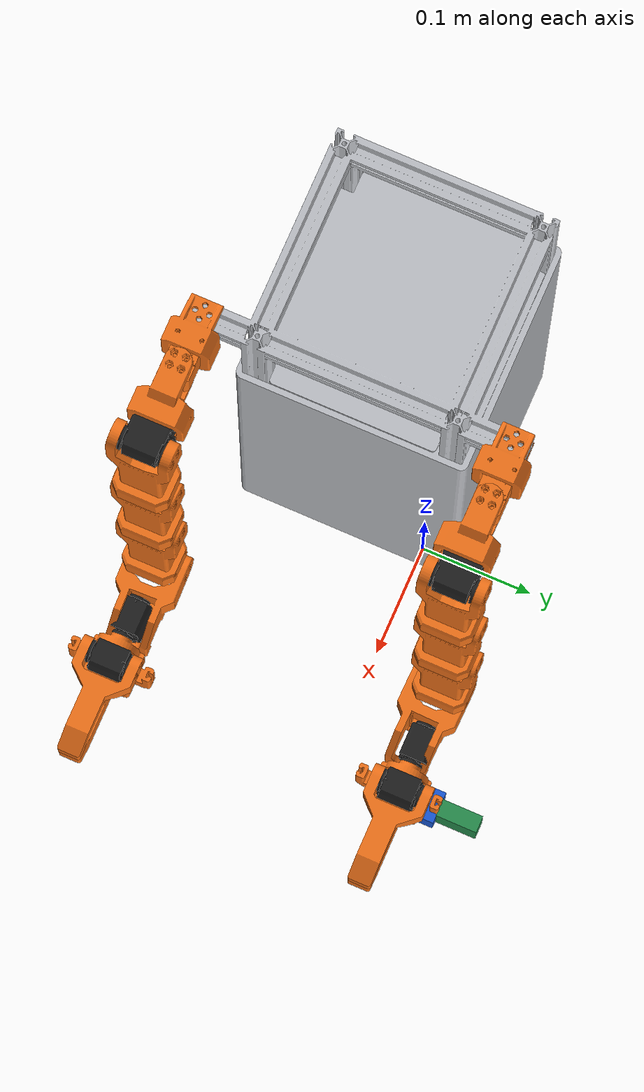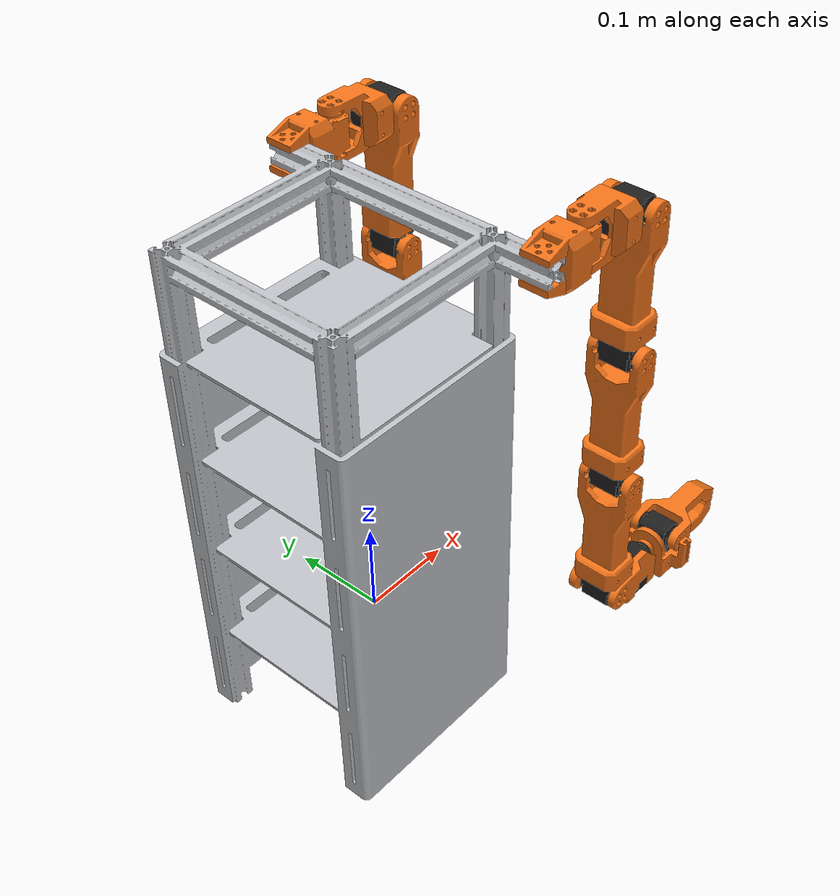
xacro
<?xml version="1.0"?>
<robot name="arm_body" xmlns:xacro="http://www.ros.org/wiki/xacro">

  <!-- Links, joints, meshes, masses and inertias generated from Fusion -->
  <xacro:include filename="$(find arm_body_description)/urdf/arm_body_core.xacro"/>

  <!-- OV3660 camera on arm A's gripper (Gazebo camera sensor). Off with camera:=false -->
  <xacro:arg name="camera" default="true"/>
  <xacro:if value="$(arg camera)">
    <xacro:include filename="$(find arm_body_description)/urdf/arm_a_camera.xacro"/>
  </xacro:if>

  <!-- Self-collision (arm vs body, arm vs arm) in Gazebo. Off by default.
       Turn on with:  ros2 launch arm_body_description gazebo.launch.py self_collide:=true -->
  <xacro:arg name="self_collide" default="false"/>
  <xacro:if value="$(arg self_collide)">
    <gazebo reference="base_link"><self_collide>true</self_collide></gazebo>
    <gazebo reference="arm_a_servo_base"><self_collide>true</self_collide></gazebo>
    <gazebo reference="arm_a_merge"><self_collide>true</self_collide></gazebo>
    <gazebo reference="arm_a_sts3250_2"><self_collide>true</self_collide></gazebo>
    <gazebo reference="arm_a_merge2_1"><self_collide>true</self_collide></gazebo>
    <gazebo reference="arm_a_sts3215_4"><self_collide>true</self_collide></gazebo>
    <gazebo reference="arm_a_merge2_2"><self_collide>true</self_collide></gazebo>
    <gazebo reference="arm_a_sts3215_5"><self_collide>true</self_collide></gazebo>
    <gazebo reference="arm_a_merge2_3"><self_collide>true</self_collide></gazebo>
    <gazebo reference="arm_a_sts3215_3"><self_collide>true</self_collide></gazebo>
    <gazebo reference="arm_a_wrist"><self_collide>true</self_collide></gazebo>
    <gazebo reference="arm_a_sts3215_6"><self_collide>true</self_collide></gazebo>
    <gazebo reference="arm_a_gripper_1"><self_collide>true</self_collide></gazebo>
    <gazebo reference="arm_a_sts3215_7"><self_collide>true</self_collide></gazebo>
    <gazebo reference="arm_a_gripper_2"><self_collide>true</self_collide></gazebo>
    <gazebo reference="arm_b_servo_base"><self_collide>true</self_collide></gazebo>
    <gazebo reference="arm_b_merge"><self_collide>true</self_collide></gazebo>
    <gazebo reference="arm_b_sts3250_2"><self_collide>true</self_collide></gazebo>
    <gazebo reference="arm_b_merge2_1"><self_collide>true</self_collide></gazebo>
    <gazebo reference="arm_b_sts3215_4"><self_collide>true</self_collide></gazebo>
    <gazebo reference="arm_b_merge2_2"><self_collide>true</self_collide></gazebo>
    <gazebo reference="arm_b_sts3215_5"><self_collide>true</self_collide></gazebo>
    <gazebo reference="arm_b_merge2_3"><self_collide>true</self_collide></gazebo>
    <gazebo reference="arm_b_sts3215_3"><self_collide>true</self_collide></gazebo>
    <gazebo reference="arm_b_wrist"><self_collide>true</self_collide></gazebo>
    <gazebo reference="arm_b_sts3215_6"><self_collide>true</self_collide></gazebo>
    <gazebo reference="arm_b_gripper_1"><self_collide>true</self_collide></gazebo>
    <gazebo reference="arm_b_sts3215_7"><self_collide>true</self_collide></gazebo>
    <gazebo reference="arm_b_gripper_2"><self_collide>true</self_collide></gazebo>
  </xacro:if>

  <!-- ros2_control: position-controlled joints, driven by Gazebo (gz_ros2_control) -->
  <ros2_control name="GazeboSimSystem" type="system">
    <hardware>
      <plugin>gz_ros2_control/GazeboSimSystem</plugin>
    </hardware>
    <joint name="arm_a_joint1">
      <command_interface name="position">
        <param name="min">-1.5708</param>
        <param name="max">1.5708</param>
      </command_interface>
      <state_interface name="position">
        <param name="initial_value">0.0</param>
      </state_interface>
      <state_interface name="velocity"/>
    </joint>
    <joint name="arm_a_joint2">
      <command_interface name="position">
        <param name="min">-3.1416</param>
        <param name="max">0.0000</param>
      </command_interface>
      <state_interface name="position">
        <param name="initial_value">-0.01</param>
      </state_interface>
      <state_interface name="velocity"/>
    </joint>
    <joint name="arm_a_joint3">
      <command_interface name="position">
        <param name="min">-1.5708</param>
        <param name="max">1.5708</param>
      </command_interface>
      <state_interface name="position">
        <param name="initial_value">0.0</param>
      </state_interface>
      <state_interface name="velocity"/>
    </joint>
    <joint name="arm_a_joint4">
      <command_interface name="position">
        <param name="min">-1.5708</param>
        <param name="max">1.5708</param>
      </command_interface>
      <state_interface name="position">
        <param name="initial_value">0.0</param>
      </state_interface>
      <state_interface name="velocity"/>
    </joint>
    <joint name="arm_a_joint5">
      <command_interface name="position">
        <param name="min">0.0000</param>
        <param name="max">3.1416</param>
      </command_interface>
      <state_interface name="position">
        <param name="initial_value">0.01</param>
      </state_interface>
      <state_interface name="velocity"/>
    </joint>
    <joint name="arm_a_joint6">
      <command_interface name="position">
        <param name="min">0.0000</param>
        <param name="max">6.2832</param>
      </command_interface>
      <state_interface name="position">
        <param name="initial_value">0.01</param>
      </state_interface>
      <state_interface name="velocity"/>
    </joint>
    <joint name="arm_a_gripper_joint">
      <command_interface name="position">
        <param name="min">0.0000</param>
        <param name="max">1.5708</param>
      </command_interface>
      <state_interface name="position">
        <param name="initial_value">0.01</param>
      </state_interface>
      <state_interface name="velocity"/>
    </joint>
    <joint name="arm_b_joint1">
      <command_interface name="position">
        <param name="min">-1.5708</param>
        <param name="max">1.5708</param>
      </command_interface>
      <state_interface name="position">
        <param name="initial_value">0.0</param>
      </state_interface>
      <state_interface name="velocity"/>
    </joint>
    <joint name="arm_b_joint2">
      <command_interface name="position">
        <param name="min">-3.1416</param>
        <param name="max">-0.0000</param>
      </command_interface>
      <state_interface name="position">
        <param name="initial_value">-0.01</param>
      </state_interface>
      <state_interface name="velocity"/>
    </joint>
    <joint name="arm_b_joint3">
      <command_interface name="position">
        <param name="min">-1.5708</param>
        <param name="max">1.5708</param>
      </command_interface>
      <state_interface name="position">
        <param name="initial_value">0.0</param>
      </state_interface>
      <state_interface name="velocity"/>
    </joint>
    <joint name="arm_b_joint4">
      <command_interface name="position">
        <param name="min">-1.5708</param>
        <param name="max">1.5708</param>
      </command_interface>
      <state_interface name="position">
        <param name="initial_value">0.0</param>
      </state_interface>
      <state_interface name="velocity"/>
    </joint>
    <joint name="arm_b_joint5">
      <command_interface name="position">
        <param name="min">0.0000</param>
        <param name="max">3.1416</param>
      </command_interface>
      <state_interface name="position">
        <param name="initial_value">0.01</param>
      </state_interface>
      <state_interface name="velocity"/>
    </joint>
    <joint name="arm_b_joint6">
      <command_interface name="position">
        <param name="min">0.0000</param>
        <param name="max">6.2832</param>
      </command_interface>
      <state_interface name="position">
        <param name="initial_value">0.01</param>
      </state_interface>
      <state_interface name="velocity"/>
    </joint>
    <joint name="arm_b_gripper_joint">
      <command_interface name="position">
        <param name="min">-0.0000</param>
        <param name="max">1.5708</param>
      </command_interface>
      <state_interface name="position">
        <param name="initial_value">0.01</param>
      </state_interface>
      <state_interface name="velocity"/>
    </joint>
  </ros2_control>

  <!-- Gazebo Harmonic: load the ros2_control plugin with our controller config -->
  <gazebo>
    <plugin filename="libgz_ros2_control-system.so" name="gz_ros2_control::GazeboSimROS2ControlPlugin">
      <parameters>$(find arm_body_description)/config/controllers.yaml</parameters>
    </plugin>
  </gazebo>

</robot>

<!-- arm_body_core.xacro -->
<robot xmlns:xacro="http://www.ros.org/wiki/xacro">
  <!-- Generated from Fusion design "Arm + Body v12". Units: metres, kilograms. -->
  <material name="petg_orange"><color rgba="0.95 0.45 0.10 1"/></material>
  <material name="servo_black"><color rgba="0.12 0.12 0.12 1"/></material>
  <material name="aluminium"><color rgba="0.75 0.76 0.78 1"/></material>
  <link name="world"/>
  <joint name="world_to_base" type="fixed">
    <parent link="world"/>
    <child link="base_link"/>
    <origin xyz="0 0 -0.2299" rpy="0 0 0"/>
  </joint>
  <link name="base_link">
    <inertial>
      <origin xyz="-0.06982 -0.065942 0.465586" rpy="0 0 0"/>
      <mass value="5.541254"/>
      <inertia ixx="1.3250e-01" ixy="-1.3357e-04" ixz="1.6258e-03" iyy="1.2468e-01" iyz="3.4035e-05" izz="6.3112e-02"/>
    </inertial>
    <visual>
      <origin xyz="0 -0.150129 0.629871" rpy="1.570796 0 0"/>
      <geometry><mesh filename="package://arm_body_description/meshes/base_link.stl" scale="0.001 0.001 0.001"/></geometry>
      <material name="aluminium"/>
    </visual>
    <collision>
      <origin xyz="0 -0.150129 0.629871" rpy="1.570796 0 0"/>
      <geometry><mesh filename="package://arm_body_description/meshes/base_link.stl" scale="0.001 0.001 0.001"/></geometry>
    </collision>
  </link>
  <link name="arm_a_servo_base">
    <inertial>
      <origin xyz="0.034003 0.066751 0.720114" rpy="0 0 0"/>
      <mass value="0.089575"/>
      <inertia ixx="1.6237e-05" ixy="-1.9098e-07" ixz="-3.1938e-07" iyy="3.0665e-05" iyz="-5.8501e-09" izz="2.6592e-05"/>
    </inertial>
    <visual>
      <origin xyz="0.008149 0.113918 0.720321" rpy="0 0 0"/>
      <geometry><mesh filename="package://arm_body_description/meshes/arm_a_servo_base.stl" scale="0.001 0.001 0.001"/></geometry>
      <material name="petg_orange"/>
    </visual>
    <collision>
      <origin xyz="0.008149 0.113918 0.720321" rpy="0 0 0"/>
      <geometry><mesh filename="package://arm_body_description/meshes/arm_a_servo_base.stl" scale="0.001 0.001 0.001"/></geometry>
    </collision>
  </link>
  <joint name="arm_a_servo_base_fixed" type="fixed">
    <parent link="base_link"/>
    <child link="arm_a_servo_base"/>
    <origin xyz="0 0 0" rpy="0 0 0"/>
  </joint>
  <link name="arm_a_merge">
    <inertial>
      <origin xyz="0.027871 -0.000869 -0.017787" rpy="0 0 0"/>
      <mass value="0.017918"/>
      <inertia ixx="8.0952e-06" ixy="1.9232e-07" ixz="4.2786e-08" iyy="8.9403e-06" iyz="-2.3279e-09" izz="6.4557e-06"/>
    </inertial>
    <visual>
      <origin xyz="-0.04205 0.109249 -0.017324" rpy="1.4634 -1.570796 -1.4634"/>
      <geometry><mesh filename="package://arm_body_description/meshes/arm_a_merge.stl" scale="0.001 0.001 0.001"/></geometry>
      <material name="petg_orange"/>
    </visual>
    <collision>
      <origin xyz="-0.04205 0.109249 -0.017324" rpy="1.4634 -1.570796 -1.4634"/>
      <geometry><mesh filename="package://arm_body_description/meshes/arm_a_merge.stl" scale="0.001 0.001 0.001"/></geometry>
    </collision>
  </link>
  <joint name="arm_a_joint1" type="revolute">
    <parent link="arm_a_servo_base"/>
    <child link="arm_a_merge"/>
    <origin xyz="0.050498 0.066869 0.738721" rpy="0 0 0"/>
    <axis xyz="0 0 1"/>
    <limit lower="-1.5708" upper="1.5708" effort="4.9" velocity="7.85"/>
    <dynamics damping="0.1" friction="0.05"/>
  </joint>
  <link name="arm_a_sts3250_2">
    <inertial>
      <origin xyz="0.054394 0.00057 -0.01793" rpy="0 0 0"/>
      <mass value="0.074500"/>
      <inertia ixx="1.0445e-05" ixy="-1.3398e-07" ixz="-2.4388e-12" iyy="1.6305e-05" iyz="1.5442e-11" izz="1.9439e-05"/>
    </inertial>
    <visual>
      <origin xyz="-0.04315 0.1098 -0.01793" rpy="-1.570796 0 1.570796"/>
      <geometry><mesh filename="package://arm_body_description/meshes/arm_a_sts3250_2.stl" scale="0.001 0.001 0.001"/></geometry>
      <material name="servo_black"/>
    </visual>
    <collision>
      <origin xyz="-0.04315 0.1098 -0.01793" rpy="-1.570796 0 1.570796"/>
      <geometry><mesh filename="package://arm_body_description/meshes/arm_a_sts3250_2.stl" scale="0.001 0.001 0.001"/></geometry>
    </collision>
  </link>
  <joint name="arm_a_sts3250_2_fixed" type="fixed">
    <parent link="arm_a_merge"/>
    <child link="arm_a_sts3250_2"/>
    <origin xyz="0 0 0" rpy="0 0 0"/>
  </joint>
  <link name="arm_a_merge2_1">
    <inertial>
      <origin xyz="0.00017 -0.018657 -0.063978" rpy="0 0 0"/>
      <mass value="0.038030"/>
      <inertia ixx="6.4847e-05" ixy="2.2923e-09" ixz="1.7577e-07" iyy="5.9124e-05" iyz="-2.7892e-08" izz="1.3347e-05"/>
    </inertial>
    <visual>
      <origin xyz="-0.11135 0.116301 0.000551" rpy="-1.56878 -1.570796 -1.572813"/>
      <geometry><mesh filename="package://arm_body_description/meshes/arm_a_merge2_1.stl" scale="0.001 0.001 0.001"/></geometry>
      <material name="petg_orange"/>
    </visual>
    <collision>
      <origin xyz="-0.11135 0.116301 0.000551" rpy="-1.56878 -1.570796 -1.572813"/>
      <geometry><mesh filename="package://arm_body_description/meshes/arm_a_merge2_1.stl" scale="0.001 0.001 0.001"/></geometry>
    </collision>
  </link>
  <joint name="arm_a_joint2" type="revolute">
    <parent link="arm_a_sts3250_2"/>
    <child link="arm_a_merge2_1"/>
    <origin xyz="0.0672 0.01905 -0.01793" rpy="0 0 0"/>
    <axis xyz="0 1 0"/>
    <limit lower="-3.1416" upper="0.0000" effort="4.9" velocity="7.85"/>
    <dynamics damping="0.1" friction="0.05"/>
  </joint>
  <link name="arm_a_sts3215_4">
    <inertial>
      <origin xyz="0 -0.017579 -0.128393" rpy="0 0 0"/>
      <mass value="0.055000"/>
      <inertia ixx="1.4353e-05" ixy="-4.5297e-09" ixz="1.3538e-11" iyy="1.2037e-05" iyz="9.5296e-08" izz="7.7063e-06"/>
    </inertial>
    <visual>
      <origin xyz="-0.111251 0.10325 -0.1287" rpy="-1.572735 1.570796 1.568857"/>
      <geometry><mesh filename="package://arm_body_description/meshes/arm_a_sts3215_4.stl" scale="0.001 0.001 0.001"/></geometry>
      <material name="servo_black"/>
    </visual>
    <collision>
      <origin xyz="-0.111251 0.10325 -0.1287" rpy="-1.572735 1.570796 1.568857"/>
      <geometry><mesh filename="package://arm_body_description/meshes/arm_a_sts3215_4.stl" scale="0.001 0.001 0.001"/></geometry>
    </collision>
  </link>
  <joint name="arm_a_sts3215_4_fixed" type="fixed">
    <parent link="arm_a_merge2_1"/>
    <child link="arm_a_sts3215_4"/>
    <origin xyz="0 0 0" rpy="0 0 0"/>
  </joint>
  <link name="arm_a_merge2_2">
    <inertial>
      <origin xyz="0.00017 -0.018657 -0.063978" rpy="0 0 0"/>
      <mass value="0.038030"/>
      <inertia ixx="6.4847e-05" ixy="2.2923e-09" ixz="1.7577e-07" iyy="5.9124e-05" iyz="-2.7892e-08" izz="1.3347e-05"/>
    </inertial>
    <visual>
      <origin xyz="-0.112251 0.1154 0.000551" rpy="-1.571184 -1.570796 -1.570409"/>
      <geometry><mesh filename="package://arm_body_description/meshes/arm_a_merge2_2.stl" scale="0.001 0.001 0.001"/></geometry>
      <material name="petg_orange"/>
    </visual>
    <collision>
      <origin xyz="-0.112251 0.1154 0.000551" rpy="-1.571184 -1.570796 -1.570409"/>
      <geometry><mesh filename="package://arm_body_description/meshes/arm_a_merge2_2.stl" scale="0.001 0.001 0.001"/></geometry>
    </collision>
  </link>
  <joint name="arm_a_joint3" type="revolute">
    <parent link="arm_a_sts3215_4"/>
    <child link="arm_a_merge2_2"/>
    <origin xyz="0 0.000901 -0.1412" rpy="0 0 0"/>
    <axis xyz="0 1 0"/>
    <limit lower="-1.5708" upper="1.5708" effort="2.94" velocity="4.72"/>
    <dynamics damping="0.1" friction="0.05"/>
  </joint>
  <link name="arm_a_sts3215_5">
    <inertial>
      <origin xyz="0 -0.01788 -0.128393" rpy="0 0 0"/>
      <mass value="0.055000"/>
      <inertia ixx="1.4354e-05" ixy="-4.5315e-09" ixz="1.3600e-11" iyy="1.2036e-05" iyz="9.5296e-08" izz="7.7063e-06"/>
    </inertial>
    <visual>
      <origin xyz="-0.111851 0.102349 -0.1287" rpy="-1.570677 1.570796 1.570915"/>
      <geometry><mesh filename="package://arm_body_description/meshes/arm_a_sts3215_5.stl" scale="0.001 0.001 0.001"/></geometry>
      <material name="servo_black"/>
    </visual>
    <collision>
      <origin xyz="-0.111851 0.102349 -0.1287" rpy="-1.570677 1.570796 1.570915"/>
      <geometry><mesh filename="package://arm_body_description/meshes/arm_a_sts3215_5.stl" scale="0.001 0.001 0.001"/></geometry>
    </collision>
  </link>
  <joint name="arm_a_sts3215_5_fixed" type="fixed">
    <parent link="arm_a_merge2_2"/>
    <child link="arm_a_sts3215_5"/>
    <origin xyz="0 0 0" rpy="0 0 0"/>
  </joint>
  <link name="arm_a_merge2_3">
    <inertial>
      <origin xyz="0.00017 -0.018657 -0.063978" rpy="0 0 0"/>
      <mass value="0.038030"/>
      <inertia ixx="6.4847e-05" ixy="2.2923e-09" ixz="1.7577e-07" iyy="5.9124e-05" iyz="-2.7892e-08" izz="1.3347e-05"/>
    </inertial>
    <visual>
      <origin xyz="-0.112851 0.1148 0.000551" rpy="-1.571631 -1.570796 -1.569961"/>
      <geometry><mesh filename="package://arm_body_description/meshes/arm_a_merge2_3.stl" scale="0.001 0.001 0.001"/></geometry>
      <material name="petg_orange"/>
    </visual>
    <collision>
      <origin xyz="-0.112851 0.1148 0.000551" rpy="-1.571631 -1.570796 -1.569961"/>
      <geometry><mesh filename="package://arm_body_description/meshes/arm_a_merge2_3.stl" scale="0.001 0.001 0.001"/></geometry>
    </collision>
  </link>
  <joint name="arm_a_joint4" type="revolute">
    <parent link="arm_a_sts3215_5"/>
    <child link="arm_a_merge2_3"/>
    <origin xyz="0 0.0006 -0.1412" rpy="0 0 0"/>
    <axis xyz="0 1 0"/>
    <limit lower="-1.5708" upper="1.5708" effort="2.94" velocity="4.72"/>
    <dynamics damping="0.1" friction="0.05"/>
  </joint>
  <link name="arm_a_sts3215_3">
    <inertial>
      <origin xyz="0 -0.018322 -0.128393" rpy="0 0 0"/>
      <mass value="0.055000"/>
      <inertia ixx="1.4354e-05" ixy="-4.5498e-09" ixz="9.6252e-12" iyy="1.2036e-05" iyz="-9.5321e-08" izz="7.7062e-06"/>
    </inertial>
    <visual>
      <origin xyz="-0.112451 0.101749 -0.1287" rpy="1.573328 1.570796 1.573328"/>
      <geometry><mesh filename="package://arm_body_description/meshes/arm_a_sts3215_3.stl" scale="0.001 0.001 0.001"/></geometry>
      <material name="servo_black"/>
    </visual>
    <collision>
      <origin xyz="-0.112451 0.101749 -0.1287" rpy="1.573328 1.570796 1.573328"/>
      <geometry><mesh filename="package://arm_body_description/meshes/arm_a_sts3215_3.stl" scale="0.001 0.001 0.001"/></geometry>
    </collision>
  </link>
  <joint name="arm_a_sts3215_3_fixed" type="fixed">
    <parent link="arm_a_merge2_3"/>
    <child link="arm_a_sts3215_3"/>
    <origin xyz="0 0 0" rpy="0 0 0"/>
  </joint>
  <link name="arm_a_wrist">
    <inertial>
      <origin xyz="0.033844 0.019438 -0.007947" rpy="0 0 0"/>
      <mass value="0.025519"/>
      <inertia ixx="1.3108e-05" ixy="-1.3181e-07" ixz="3.9390e-06" iyy="1.7716e-05" iyz="4.4573e-08" izz="1.9475e-05"/>
    </inertial>
    <visual>
      <origin xyz="-0.111899 0.064149 -0.00495" rpy="1.596465 -1.570796 -1.62352"/>
      <geometry><mesh filename="package://arm_body_description/meshes/arm_a_wrist.stl" scale="0.001 0.001 0.001"/></geometry>
      <material name="petg_orange"/>
    </visual>
    <collision>
      <origin xyz="-0.111899 0.064149 -0.00495" rpy="1.596465 -1.570796 -1.62352"/>
      <geometry><mesh filename="package://arm_body_description/meshes/arm_a_wrist.stl" scale="0.001 0.001 0.001"/></geometry>
    </collision>
  </link>
  <joint name="arm_a_joint5" type="revolute">
    <parent link="arm_a_sts3215_3"/>
    <child link="arm_a_wrist"/>
    <origin xyz="0 -0.0383 -0.1412" rpy="0 0 0"/>
    <axis xyz="0 1 0"/>
    <limit lower="0.0000" upper="3.1416" effort="2.94" velocity="4.72"/>
    <dynamics damping="0.1" friction="0.05"/>
  </joint>
  <link name="arm_a_sts3215_6">
    <inertial>
      <origin xyz="0.052422 0.019647 -0.017757" rpy="0 0 0"/>
      <mass value="0.055000"/>
      <inertia ixx="1.2031e-05" ixy="-9.5692e-09" ixz="-9.5327e-08" iyy="1.4349e-05" iyz="1.6071e-11" izz="7.6962e-06"/>
    </inertial>
    <visual>
      <origin xyz="-0.111899 0.192249 -0.01745" rpy="0.052723 -1.570796 -1.62352"/>
      <geometry><mesh filename="package://arm_body_description/meshes/arm_a_sts3215_6.stl" scale="0.001 0.001 0.001"/></geometry>
      <material name="servo_black"/>
    </visual>
    <collision>
      <origin xyz="-0.111899 0.192249 -0.01745" rpy="0.052723 -1.570796 -1.62352"/>
      <geometry><mesh filename="package://arm_body_description/meshes/arm_a_sts3215_6.stl" scale="0.001 0.001 0.001"/></geometry>
    </collision>
  </link>
  <joint name="arm_a_sts3215_6_fixed" type="fixed">
    <parent link="arm_a_wrist"/>
    <child link="arm_a_sts3215_6"/>
    <origin xyz="0 0 0" rpy="0 0 0"/>
  </joint>
  <link name="arm_a_gripper_1">
    <inertial>
      <origin xyz="0.043641 -0.00047 -0.014381" rpy="0 0 0"/>
      <mass value="0.025921"/>
      <inertia ixx="9.0235e-06" ixy="-2.1818e-07" ixz="8.7572e-07" iyy="2.7646e-05" iyz="-3.0866e-08" izz="3.0635e-05"/>
    </inertial>
    <visual>
      <origin xyz="-0.180299 0.044301 0" rpy="1.62352 -1.570796 -1.62352"/>
      <geometry><mesh filename="package://arm_body_description/meshes/arm_a_gripper_1.stl" scale="0.001 0.001 0.001"/></geometry>
      <material name="petg_orange"/>
    </visual>
    <collision>
      <origin xyz="-0.180299 0.044301 0" rpy="1.62352 -1.570796 -1.62352"/>
      <geometry><mesh filename="package://arm_body_description/meshes/arm_a_gripper_1.stl" scale="0.001 0.001 0.001"/></geometry>
    </collision>
  </link>
  <joint name="arm_a_joint6" type="revolute">
    <parent link="arm_a_sts3215_6"/>
    <child link="arm_a_gripper_1"/>
    <origin xyz="0.0684 0.019648 -0.00495" rpy="0 0 0"/>
    <axis xyz="1 0 0"/>
    <limit lower="0.0000" upper="6.2832" effort="2.94" velocity="4.72"/>
    <dynamics damping="0.1" friction="0.05"/>
  </joint>
  <link name="arm_a_sts3215_7">
    <inertial>
      <origin xyz="0.026301 0.00077 0.000193" rpy="0 0 0"/>
      <mass value="0.055000"/>
      <inertia ixx="1.4343e-05" ixy="-1.5009e-08" ixz="-1.9649e-11" iyy="1.2026e-05" iyz="-9.5288e-08" izz="7.6854e-06"/>
    </inertial>
    <visual>
      <origin xyz="-0.180849 0.215101 0.0005" rpy="1.623281 -1.570796 -1.623281"/>
      <geometry><mesh filename="package://arm_body_description/meshes/arm_a_sts3215_7.stl" scale="0.001 0.001 0.001"/></geometry>
      <material name="servo_black"/>
    </visual>
    <collision>
      <origin xyz="-0.180849 0.215101 0.0005" rpy="1.623281 -1.570796 -1.623281"/>
      <geometry><mesh filename="package://arm_body_description/meshes/arm_a_sts3215_7.stl" scale="0.001 0.001 0.001"/></geometry>
    </collision>
  </link>
  <joint name="arm_a_sts3215_7_fixed" type="fixed">
    <parent link="arm_a_gripper_1"/>
    <child link="arm_a_sts3215_7"/>
    <origin xyz="0 0 0" rpy="0 0 0"/>
  </joint>
  <link name="arm_a_gripper_2">
    <inertial>
      <origin xyz="0.035324 -0.018991 0.000973" rpy="0 0 0"/>
      <mass value="0.014562"/>
      <inertia ixx="3.2637e-06" ixy="2.7195e-08" ixz="2.6090e-08" iyy="1.0597e-05" iyz="1.4854e-09" izz="1.2709e-05"/>
    </inertial>
    <visual>
      <origin xyz="-0.207149 0.025101 -0.01295" rpy="1.624476 -1.570796 -1.624476"/>
      <geometry><mesh filename="package://arm_body_description/meshes/arm_a_gripper_2.stl" scale="0.001 0.001 0.001"/></geometry>
      <material name="petg_orange"/>
    </visual>
    <collision>
      <origin xyz="-0.207149 0.025101 -0.01295" rpy="1.624476 -1.570796 -1.624476"/>
      <geometry><mesh filename="package://arm_body_description/meshes/arm_a_gripper_2.stl" scale="0.001 0.001 0.001"/></geometry>
    </collision>
  </link>
  <joint name="arm_a_gripper_joint" type="revolute">
    <parent link="arm_a_sts3215_7"/>
    <child link="arm_a_gripper_2"/>
    <origin xyz="0.0263 0.01925 0.013" rpy="0 0 0"/>
    <axis xyz="0 -1 0"/>
    <limit lower="0.0000" upper="1.5708" effort="2.94" velocity="4.72"/>
    <dynamics damping="0.1" friction="0.05"/>
  </joint>
  <link name="arm_b_servo_base">
    <inertial>
      <origin xyz="0.032428 -0.196607 0.720114" rpy="0 0 0"/>
      <mass value="0.089575"/>
      <inertia ixx="1.6232e-05" ixy="-2.3376e-08" ixz="-2.7864e-07" iyy="2.8534e-05" iyz="-1.7108e-09" izz="2.4457e-05"/>
    </inertial>
    <visual>
      <origin xyz="0.040149 -0.196138 0.720321" rpy="3.141593 0 1.570796"/>
      <geometry><mesh filename="package://arm_body_description/meshes/arm_b_servo_base.stl" scale="0.001 0.001 0.001"/></geometry>
      <material name="petg_orange"/>
    </visual>
    <collision>
      <origin xyz="0.040149 -0.196138 0.720321" rpy="3.141593 0 1.570796"/>
      <geometry><mesh filename="package://arm_body_description/meshes/arm_b_servo_base.stl" scale="0.001 0.001 0.001"/></geometry>
    </collision>
  </link>
  <joint name="arm_b_servo_base_fixed" type="fixed">
    <parent link="base_link"/>
    <child link="arm_b_servo_base"/>
    <origin xyz="0 0 0" rpy="0 0 0"/>
  </joint>
  <link name="arm_b_merge">
    <inertial>
      <origin xyz="0.027871 0.000869 -0.017787" rpy="0 0 0"/>
      <mass value="0.017918"/>
      <inertia ixx="8.0952e-06" ixy="-1.9232e-07" ixz="4.2807e-08" iyy="8.9403e-06" iyz="2.3275e-09" izz="6.4557e-06"/>
    </inertial>
    <visual>
      <origin xyz="0.054149 0.00075 -0.017324" rpy="-0.221495 -1.570796 -1.349302"/>
      <geometry><mesh filename="package://arm_body_description/meshes/arm_b_merge.stl" scale="0.001 0.001 0.001"/></geometry>
      <material name="petg_orange"/>
    </visual>
    <collision>
      <origin xyz="0.054149 0.00075 -0.017324" rpy="-0.221495 -1.570796 -1.349302"/>
      <geometry><mesh filename="package://arm_body_description/meshes/arm_b_merge.stl" scale="0.001 0.001 0.001"/></geometry>
    </collision>
  </link>
  <joint name="arm_b_joint1" type="revolute">
    <parent link="arm_b_servo_base"/>
    <child link="arm_b_merge"/>
    <origin xyz="0.047141 -0.196589 0.738721" rpy="0 0 0"/>
    <axis xyz="0 0 -1"/>
    <limit lower="-1.5708" upper="1.5708" effort="4.9" velocity="7.85"/>
    <dynamics damping="0.1" friction="0.05"/>
  </joint>
  <link name="arm_b_sts3250_2">
    <inertial>
      <origin xyz="0.054393 -0.000571 -0.01793" rpy="0 0 0"/>
      <mass value="0.074500"/>
      <inertia ixx="1.0451e-05" ixy="1.2909e-07" ixz="-4.8988e-11" iyy="1.6310e-05" iyz="1.0792e-10" izz="1.9450e-05"/>
    </inertial>
    <visual>
      <origin xyz="-0.047141 0.196589 -0.738721" rpy="0 0 0"/>
      <geometry><mesh filename="package://arm_body_description/meshes/arm_b_sts3250_2.stl" scale="0.001 0.001 0.001"/></geometry>
      <material name="servo_black"/>
    </visual>
    <collision>
      <origin xyz="-0.047141 0.196589 -0.738721" rpy="0 0 0"/>
      <geometry><mesh filename="package://arm_body_description/meshes/arm_b_sts3250_2.stl" scale="0.001 0.001 0.001"/></geometry>
    </collision>
  </link>
  <joint name="arm_b_sts3250_2_fixed" type="fixed">
    <parent link="arm_b_merge"/>
    <child link="arm_b_sts3250_2"/>
    <origin xyz="0 0 0" rpy="0 0 0"/>
  </joint>
  <link name="arm_b_merge2_1">
    <inertial>
      <origin xyz="0.00017 -0.017744 -0.063978" rpy="0 0 0"/>
      <mass value="0.038030"/>
      <inertia ixx="6.4847e-05" ixy="-2.2909e-09" ixz="1.7577e-07" iyy="5.9124e-05" iyz="2.7818e-08" izz="1.3347e-05"/>
    </inertial>
    <visual>
      <origin xyz="0.013051 -0.0187 0.000551" rpy="3.131432 -1.570796 -1.560635"/>
      <geometry><mesh filename="package://arm_body_description/meshes/arm_b_merge2.stl" scale="0.001 0.001 0.001"/></geometry>
      <material name="petg_orange"/>
    </visual>
    <collision>
      <origin xyz="0.013051 -0.0187 0.000551" rpy="3.131432 -1.570796 -1.560635"/>
      <geometry><mesh filename="package://arm_body_description/meshes/arm_b_merge2.stl" scale="0.001 0.001 0.001"/></geometry>
    </collision>
  </link>
  <joint name="arm_b_joint2" type="revolute">
    <parent link="arm_b_sts3250_2"/>
    <child link="arm_b_merge2_1"/>
    <origin xyz="0.0672 0.01735 -0.01793" rpy="0 0 0"/>
    <axis xyz="0 1 0"/>
    <limit lower="-3.1416" upper="-0.0000" effort="4.9" velocity="7.85"/>
    <dynamics damping="0.1" friction="0.05"/>
  </joint>
  <link name="arm_b_sts3215_4">
    <inertial>
      <origin xyz="0 -0.018822 -0.128393" rpy="0 0 0"/>
      <mass value="0.055000"/>
      <inertia ixx="1.4358e-05" ixy="-1.1400e-11" ixz="1.8007e-12" iyy="1.2041e-05" iyz="-9.5310e-08" izz="7.7154e-06"/>
    </inertial>
    <visual>
      <origin xyz="0 -0.018601 -0.1287" rpy="-0.03355 1.570796 1.537247"/>
      <geometry><mesh filename="package://arm_body_description/meshes/arm_b_sts3215.stl" scale="0.001 0.001 0.001"/></geometry>
      <material name="servo_black"/>
    </visual>
    <collision>
      <origin xyz="0 -0.018601 -0.1287" rpy="-0.03355 1.570796 1.537247"/>
      <geometry><mesh filename="package://arm_body_description/meshes/arm_b_sts3215.stl" scale="0.001 0.001 0.001"/></geometry>
    </collision>
  </link>
  <joint name="arm_b_sts3215_4_fixed" type="fixed">
    <parent link="arm_b_merge2_1"/>
    <child link="arm_b_sts3215_4"/>
    <origin xyz="0 0 0" rpy="0 0 0"/>
  </joint>
  <link name="arm_b_merge2_2">
    <inertial>
      <origin xyz="0.00017 -0.017744 -0.063978" rpy="0 0 0"/>
      <mass value="0.038030"/>
      <inertia ixx="6.4847e-05" ixy="-2.2909e-09" ixz="1.7577e-07" iyy="5.9124e-05" iyz="2.7818e-08" izz="1.3347e-05"/>
    </inertial>
    <visual>
      <origin xyz="0.013051 -0.0187 0.000551" rpy="-3.107954 -1.570796 -1.604435"/>
      <geometry><mesh filename="package://arm_body_description/meshes/arm_b_merge2.stl" scale="0.001 0.001 0.001"/></geometry>
      <material name="petg_orange"/>
    </visual>
    <collision>
      <origin xyz="0.013051 -0.0187 0.000551" rpy="-3.107954 -1.570796 -1.604435"/>
      <geometry><mesh filename="package://arm_body_description/meshes/arm_b_merge2.stl" scale="0.001 0.001 0.001"/></geometry>
    </collision>
  </link>
  <joint name="arm_b_joint3" type="revolute">
    <parent link="arm_b_sts3215_4"/>
    <child link="arm_b_merge2_2"/>
    <origin xyz="0 -0.000901 -0.1412" rpy="0 0 0"/>
    <axis xyz="0 1 0"/>
    <limit lower="-1.5708" upper="1.5708" effort="2.94" velocity="4.72"/>
    <dynamics damping="0.1" friction="0.05"/>
  </joint>
  <link name="arm_b_sts3215_5">
    <inertial>
      <origin xyz="0 -0.018521 -0.128393" rpy="0 0 0"/>
      <mass value="0.055000"/>
      <inertia ixx="1.4358e-05" ixy="-1.1400e-11" ixz="1.8007e-12" iyy="1.2041e-05" iyz="-9.5310e-08" izz="7.7154e-06"/>
    </inertial>
    <visual>
      <origin xyz="0 -0.0183 -0.1287" rpy="-1.202251 1.570796 0.368545"/>
      <geometry><mesh filename="package://arm_body_description/meshes/arm_b_sts3215.stl" scale="0.001 0.001 0.001"/></geometry>
      <material name="servo_black"/>
    </visual>
    <collision>
      <origin xyz="0 -0.0183 -0.1287" rpy="-1.202251 1.570796 0.368545"/>
      <geometry><mesh filename="package://arm_body_description/meshes/arm_b_sts3215.stl" scale="0.001 0.001 0.001"/></geometry>
    </collision>
  </link>
  <joint name="arm_b_sts3215_5_fixed" type="fixed">
    <parent link="arm_b_merge2_2"/>
    <child link="arm_b_sts3215_5"/>
    <origin xyz="0 0 0" rpy="0 0 0"/>
  </joint>
  <link name="arm_b_merge2_3">
    <inertial>
      <origin xyz="0.00017 -0.017744 -0.063978" rpy="0 0 0"/>
      <mass value="0.038030"/>
      <inertia ixx="6.4847e-05" ixy="-2.2909e-09" ixz="1.7577e-07" iyy="5.9124e-05" iyz="2.7818e-08" izz="1.3347e-05"/>
    </inertial>
    <visual>
      <origin xyz="0.013051 -0.0187 0.000551" rpy="-1.938454 -1.570796 -2.773935"/>
      <geometry><mesh filename="package://arm_body_description/meshes/arm_b_merge2.stl" scale="0.001 0.001 0.001"/></geometry>
      <material name="petg_orange"/>
    </visual>
    <collision>
      <origin xyz="0.013051 -0.0187 0.000551" rpy="-1.938454 -1.570796 -2.773935"/>
      <geometry><mesh filename="package://arm_body_description/meshes/arm_b_merge2.stl" scale="0.001 0.001 0.001"/></geometry>
    </collision>
  </link>
  <joint name="arm_b_joint4" type="revolute">
    <parent link="arm_b_sts3215_5"/>
    <child link="arm_b_merge2_3"/>
    <origin xyz="0 -0.0006 -0.1412" rpy="0 0 0"/>
    <axis xyz="0 1 0"/>
    <limit lower="-1.5708" upper="1.5708" effort="2.94" velocity="4.72"/>
    <dynamics damping="0.1" friction="0.05"/>
  </joint>
  <link name="arm_b_sts3215_3">
    <inertial>
      <origin xyz="0 -0.018079 -0.128393" rpy="0 0 0"/>
      <mass value="0.055000"/>
      <inertia ixx="1.4358e-05" ixy="-1.1400e-11" ixz="-1.8007e-12" iyy="1.2041e-05" iyz="9.5310e-08" izz="7.7154e-06"/>
    </inertial>
    <visual>
      <origin xyz="0 -0.0183 -0.1287" rpy="3.107872 1.570796 1.537076"/>
      <geometry><mesh filename="package://arm_body_description/meshes/arm_b_sts3215.stl" scale="0.001 0.001 0.001"/></geometry>
      <material name="servo_black"/>
    </visual>
    <collision>
      <origin xyz="0 -0.0183 -0.1287" rpy="3.107872 1.570796 1.537076"/>
      <geometry><mesh filename="package://arm_body_description/meshes/arm_b_sts3215.stl" scale="0.001 0.001 0.001"/></geometry>
    </collision>
  </link>
  <joint name="arm_b_sts3215_3_fixed" type="fixed">
    <parent link="arm_b_merge2_3"/>
    <child link="arm_b_sts3215_3"/>
    <origin xyz="0 0 0" rpy="0 0 0"/>
  </joint>
  <link name="arm_b_wrist">
    <inertial>
      <origin xyz="0.033844 0.025462 -0.007947" rpy="0 0 0"/>
      <mass value="0.025519"/>
      <inertia ixx="1.3108e-05" ixy="1.3173e-07" ixz="3.9390e-06" iyy="1.7716e-05" iyz="-4.4554e-08" izz="1.9476e-05"/>
    </inertial>
    <visual>
      <origin xyz="-0.0759 0.025252 -0.00495" rpy="0.804138 -1.570796 -2.345412"/>
      <geometry><mesh filename="package://arm_body_description/meshes/arm_b_wrist.stl" scale="0.001 0.001 0.001"/></geometry>
      <material name="petg_orange"/>
    </visual>
    <collision>
      <origin xyz="-0.0759 0.025252 -0.00495" rpy="0.804138 -1.570796 -2.345412"/>
      <geometry><mesh filename="package://arm_body_description/meshes/arm_b_wrist.stl" scale="0.001 0.001 0.001"/></geometry>
    </collision>
  </link>
  <joint name="arm_b_joint5" type="revolute">
    <parent link="arm_b_sts3215_3"/>
    <child link="arm_b_wrist"/>
    <origin xyz="0 -0.043 -0.1412" rpy="0 0 0"/>
    <axis xyz="0 1 0"/>
    <limit lower="0.0000" upper="3.1416" effort="2.94" velocity="4.72"/>
    <dynamics damping="0.1" friction="0.05"/>
  </joint>
  <link name="arm_b_sts3215_6">
    <inertial>
      <origin xyz="0.052421 0.025252 -0.017757" rpy="0 0 0"/>
      <mass value="0.055000"/>
      <inertia ixx="1.2041e-05" ixy="-1.1400e-11" ixz="-9.5310e-08" iyy="1.4358e-05" iyz="1.8007e-12" izz="7.7154e-06"/>
    </inertial>
    <visual>
      <origin xyz="0.0522 0.025252 -0.01745" rpy="2.345412 -1.570796 -2.345412"/>
      <geometry><mesh filename="package://arm_body_description/meshes/arm_b_sts3215.stl" scale="0.001 0.001 0.001"/></geometry>
      <material name="servo_black"/>
    </visual>
    <collision>
      <origin xyz="0.0522 0.025252 -0.01745" rpy="2.345412 -1.570796 -2.345412"/>
      <geometry><mesh filename="package://arm_body_description/meshes/arm_b_sts3215.stl" scale="0.001 0.001 0.001"/></geometry>
    </collision>
  </link>
  <joint name="arm_b_sts3215_6_fixed" type="fixed">
    <parent link="arm_b_wrist"/>
    <child link="arm_b_sts3215_6"/>
    <origin xyz="0 0 0" rpy="0 0 0"/>
  </joint>
  <link name="arm_b_gripper_1">
    <inertial>
      <origin xyz="0.041141 0.00047 -0.014381" rpy="0 0 0"/>
      <mass value="0.025921"/>
      <inertia ixx="9.0235e-06" ixy="2.1818e-07" ixz="8.7572e-07" iyy="2.7646e-05" iyz="3.0866e-08" izz="3.0635e-05"/>
    </inertial>
    <visual>
      <origin xyz="-0.147 0 0" rpy="0.774616 -1.570796 -2.345412"/>
      <geometry><mesh filename="package://arm_body_description/meshes/arm_b_gripper_1.stl" scale="0.001 0.001 0.001"/></geometry>
      <material name="petg_orange"/>
    </visual>
    <collision>
      <origin xyz="-0.147 0 0" rpy="0.774616 -1.570796 -2.345412"/>
      <geometry><mesh filename="package://arm_body_description/meshes/arm_b_gripper_1.stl" scale="0.001 0.001 0.001"/></geometry>
    </collision>
  </link>
  <joint name="arm_b_joint6" type="revolute">
    <parent link="arm_b_sts3215_6"/>
    <child link="arm_b_gripper_1"/>
    <origin xyz="0.0709 0.025252 -0.00495" rpy="0 0 0"/>
    <axis xyz="-1 0 0"/>
    <limit lower="0.0000" upper="6.2832" effort="2.94" velocity="4.72"/>
    <dynamics damping="0.1" friction="0.05"/>
  </joint>
  <link name="arm_b_sts3215_7">
    <inertial>
      <origin xyz="0.0238 -0.000771 0.000193" rpy="0 0 0"/>
      <mass value="0.055000"/>
      <inertia ixx="1.4358e-05" ixy="1.1400e-11" ixz="1.8007e-12" iyy="1.2041e-05" iyz="9.5310e-08" izz="7.7154e-06"/>
    </inertial>
    <visual>
      <origin xyz="0.0238 -0.00055 0.0005" rpy="0.779173 -1.570796 -2.349969"/>
      <geometry><mesh filename="package://arm_body_description/meshes/arm_b_sts3215.stl" scale="0.001 0.001 0.001"/></geometry>
      <material name="servo_black"/>
    </visual>
    <collision>
      <origin xyz="0.0238 -0.00055 0.0005" rpy="0.779173 -1.570796 -2.349969"/>
      <geometry><mesh filename="package://arm_body_description/meshes/arm_b_sts3215.stl" scale="0.001 0.001 0.001"/></geometry>
    </collision>
  </link>
  <joint name="arm_b_sts3215_7_fixed" type="fixed">
    <parent link="arm_b_gripper_1"/>
    <child link="arm_b_sts3215_7"/>
    <origin xyz="0 0 0" rpy="0 0 0"/>
  </joint>
  <link name="arm_b_gripper_2">
    <inertial>
      <origin xyz="0.035324 -0.017409 0.000973" rpy="0 0 0"/>
      <mass value="0.014562"/>
      <inertia ixx="3.2637e-06" ixy="-2.7195e-08" ixz="2.6090e-08" iyy="1.0597e-05" iyz="-1.4854e-09" izz="1.2709e-05"/>
    </inertial>
    <visual>
      <origin xyz="-0.17075 -0.0177 -0.01295" rpy="0.777991 -1.570796 -2.348787"/>
      <geometry><mesh filename="package://arm_body_description/meshes/arm_b_gripper_2.stl" scale="0.001 0.001 0.001"/></geometry>
      <material name="petg_orange"/>
    </visual>
    <collision>
      <origin xyz="-0.17075 -0.0177 -0.01295" rpy="0.777991 -1.570796 -2.348787"/>
      <geometry><mesh filename="package://arm_body_description/meshes/arm_b_gripper_2.stl" scale="0.001 0.001 0.001"/></geometry>
    </collision>
  </link>
  <joint name="arm_b_gripper_joint" type="revolute">
    <parent link="arm_b_sts3215_7"/>
    <child link="arm_b_gripper_2"/>
    <origin xyz="0.0238 0.01715 0.013" rpy="0 0 0"/>
    <axis xyz="0 -1 0"/>
    <limit lower="-0.0000" upper="1.5708" effort="2.94" velocity="4.72"/>
    <dynamics damping="0.1" friction="0.05"/>
  </joint>
</robot>

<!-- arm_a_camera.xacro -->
<robot xmlns:xacro="http://www.ros.org/wiki/xacro">

  <link name="arm_a_camera_link">
    <inertial>
      <origin xyz="0 0 0" rpy="0 0 0"/>
      <mass value="0.010"/>
      <inertia ixx="1e-6" ixy="0" ixz="0" iyy="1e-6" iyz="0" izz="1e-6"/>
    </inertial>
    <!-- camera case, 15.1 x 36.5 x 31.7 mm along gripper_1 x, y, z
         (here x = gripper_1 x, y = -gripper_1 z, z = gripper_1 y) -->
    <visual>
      <origin xyz="-0.00475 0 -0.00025" rpy="0 0 0"/>
      <geometry><box size="0.0151 0.0317 0.0365"/></geometry>
      <material name="camera_green"><color rgba="0.15 0.55 0.30 1"/></material>
    </visual>
    <!-- mount between gripper and case -->
    <visual>
      <origin xyz="-0.0048 0 -0.0258" rpy="0 0 0"/>
      <geometry><box size="0.0282 0.0257 0.01455"/></geometry>
      <material name="camera_mount_blue"><color rgba="0.10 0.35 0.85 1"/></material>
    </visual>
    <!-- lens, 8 mm diameter -->
    <visual>
      <origin xyz="0 0 0" rpy="0 1.570796 0"/>
      <geometry><cylinder radius="0.004" length="0.003"/></geometry>
      <material name="lens_black"><color rgba="0.05 0.05 0.05 1"/></material>
    </visual>
  </link>
  <joint name="arm_a_camera_fixed" type="fixed">
    <parent link="arm_a_gripper_1"/>
    <child link="arm_a_camera_link"/>
    <origin xyz="0.0308 0.0552 -0.0165" rpy="-1.570796 0 0"/>
  </joint>

  <link name="arm_a_camera_optical_frame"/>
  <joint name="arm_a_camera_optical_fixed" type="fixed">
    <parent link="arm_a_camera_link"/>
    <child link="arm_a_camera_optical_frame"/>
    <origin xyz="0 0 0" rpy="-1.570796 0 -1.570796"/>
  </joint>

  <!-- Gazebo camera. 640x480 and ~55 deg horizontal FOV (a typical 66 deg diagonal OV3660
       module lens); needs the Sensors system in the world (see arm_motion_demos/worlds). -->
  <gazebo reference="arm_a_camera_link">
    <sensor name="arm_a_camera" type="camera">
      <always_on>true</always_on>
      <update_rate>15</update_rate>
      <topic>arm_a/camera/image_raw</topic>
      <gz_frame_id>arm_a_camera_optical_frame</gz_frame_id>
      <camera>
        <camera_info_topic>arm_a/camera/camera_info</camera_info_topic>
        <horizontal_fov>0.96</horizontal_fov>
        <image>
          <width>640</width>
          <height>480</height>
          <format>R8G8B8</format>
        </image>
        <clip>
          <near>0.02</near>
          <far>5.0</far>
        </clip>
      </camera>
    </sensor>
  </gazebo>

</robot>
